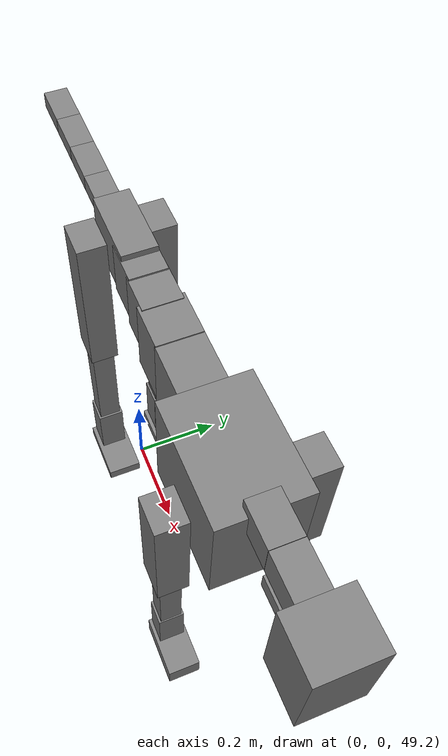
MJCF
<mujoco model="dog">

    <default>
        <joint armature="0.02" stiffness="1" damping="0.2" limited="true"/>
        <geom condim="3" friction="1 0.05 0.05" margin="0.01"/>
        <motor ctrllimited="true" ctrlrange="-1.0 1.0" forcelimited="true" gear="50"/>
    </default>

    <compiler inertiafromgeom="true" angle="radian"/>

    <option timestep="0.016" iterations="50" tolerance="1e-10" solver="Newton" jacobian="dense" cone="pyramidal"/>

    <size nconmax="20000" njmax="60000" nstack="5000000"/>
    <visual>
        <map force="0.1" zfar="30"/>
        <rgba haze="0.15 0.25 0.35 1"/>
        <quality shadowsize="2048"/>
        <global offwidth="800" offheight="800"/>
    </visual>

    <asset>
        <texture type="skybox" builtin="gradient" rgb1="0.3 0.5 0.7" rgb2="0 0 0" width="512" height="512"/>
        <texture name="texplane" type="2d" builtin="checker" rgb1=".2 .3 .4" rgb2=".1 0.15 0.2" width="512" height="512"
                 mark="cross" markrgb=".8 .8 .8"/>
        <texture name="texgeom" type="cube" builtin="flat" mark="cross" width="127" height="1278" rgb1="0.8 0.6 0.4"
                 rgb2="0.8 0.6 0.4" markrgb="1 1 1" random="0.01"/>

        <material name="matplane" reflectance="0.3" texture="texplane" texrepeat="1 1" texuniform="true"/>
        <material name="matgeom" texture="texgeom" texuniform="true" rgba="0.8 0.6 .4 1"/>
    </asset>

    <worldbody>
        <geom name="floor" pos="0 0 0" size="0 0 .25" type="plane" material="matplane" condim="3"/>

        <light directional="false" diffuse=".2 .2 .2" specular="0 0 0" pos="0 0 5" dir="0 0 -1" castshadow="false"/>
        <light mode="targetbodycom" target="torso" directional="false" diffuse=".8 .8 .8" specular="0.3 0.3 0.3"
               pos="0 0 4.0" dir="0 0 -1"/>

        <body name="root" pos="0 0 50">
            <freejoint name="root_1"/>
            <geom type="box" pos="0 0 -0.02" size="0.0774  0.0358  0.063" density="2030"/>

            <body name="spine1" pos="0.054 0 0">
                <joint name="spine1_y" axis="0 1 0" range="0 0.7" limited="true"/>
                <geom type="box" pos="0.02375 0 -0.03" size="0.04375  0.0375  0.05985" density="2030"/>

                <body name="spine2" pos="0.0612 0 0">
                    <joint name="spine2_y" axis="0 1 0" range="-0.15 0.15" limited="true"/>
                    <geom type="box" pos="0.03555  0  -0.04" size="0.04055  0.039  0.06615" density="2030"/>

                    <body name="spine3" pos="0.0730 0 0">
                        <joint name="spine3_y" axis="0 1 0" range="-0.15 0.15" limited="true"/>
                        <geom type="box" pos="0.03555  0  -0.057" size="0.04555  0.0445  0.081" density="2030"/>

                        <body name="spine4" pos="0.0780 0 0">
                            <joint name="spine4_y" axis="0 1 0" range="-0.15 0.15" limited="true"/>
                            <geom type="box" pos="0.05265  0  -0.07" size="0.05265  0.045  0.09135" density="2030"/>

                            <body name="torso" pos="0.1082 0 0">
                                <joint name="torso_y" axis="0 1 0" range="-0.15 0.15" limited="true"/>
                                <geom type="box" pos="0.11925  0  -0.085" size="0.11925  0.085  0.11745"
                                      density="2030"/>

                                <body name="neck1" pos="0.2160  0   0.0180">
                                    <joint name="neck1_y" axis="0 1 0" range="-1.2  -1" limited="true"/>
                                    <geom type="box" pos="0.0423  0  0" size="0.0423  0.03  0.036" density="2325"/>

                                    <body name="neck2" pos="0.0853  0  0">
                                        <joint name="neck2_y" axis="0 1 0" range="0.1  0" limited="true"/>
                                        <geom type="box" pos="0.0423  0  0" size="0.0423  0.03  0.036" density="2325"/>

                                        <body name="head" pos="0.0853  0  0">
                                            <joint name="head_y" axis="0 1 0" range="-0.3  -0.2" limited="true"/>
                                            <geom type="box" pos="0.0531  0  -0.055" size="0.0531  0.06  0.1044"
                                                  density="4030"/>

                                        </body>
                                    </body>
                                </body>

                                <body name="front_shoulder" pos="0.156  0   -0.0480">
                                    <joint name="front_shoulder_y" axis="0 1 0" range="-1 1.5" limited="true"/>
                                    <geom type="box" pos="0 0.13 -0.1065" size="0.0347  0.0297  0.1332" density="1158"/>
                                    <geom type="box" pos="0 -0.13 -0.1065" size="0.0347  0.0297  0.1332"
                                          density="1158"/>

                                    <body name="front_elbow" pos="0  0  -0.2130">
                                        <joint name="front_elbow_y" axis="0 1 0" range="-2 0" limited="true"/>
                                        <geom type="box" pos="0 0.13 -0.1080" size="0.0206  0.0211  0.1080"
                                              density="1081"/>
                                        <geom type="box" pos="0 -0.13 -0.1080" size="0.0206  0.0211  0.1080"
                                              density="1081"/>

                                        <body name="front_wrist" pos="0  0  -0.2160">
                                            <joint name="front_wrist_y" axis="0 1 0" range="-0.2 0" limited="true"/>
                                            <geom type="box" pos="0 0.13 -0.0573" size="0.0229  0.0254  0.0704"
                                                  density="1664"/>
                                            <geom type="box" pos="0 -0.13 -0.0573" size="0.0229  0.0254  0.0704"
                                                  density="1664"/>

                                            <body name="front_finger_end" pos="0  0  -0.1145">
                                                <joint name="front_finger_y" axis="0 1 0" range="-0.4 1"
                                                       limited="true"/>
                                                <geom type="box" pos="0.0323  0.13  -0.0111"
                                                      size="0.0591  0.0323  0.0261" density="1515"/>
                                                <geom type="box" pos="0.0323  -0.13  -0.0111"
                                                      size="0.0591  0.0323  0.0261" density="1515"/>

                                            </body>

                                        </body>
                                    </body>
                                </body>

                            </body>
                        </body>
                    </body>
                </body>
            </body>

            <body name="back_hip" pos="-0.03 0 -0.018">
                <joint name="back_hip_y" axis="0 1 0" range="-1.5 0.3" limited="true"/>
                <geom type="box" pos="0 0.07 -0.1506" size="0.0377  0.0296  0.1734" density="1154"/>
                <geom type="box" pos="0 -0.07 -0.1506" size="0.0377  0.0296  0.1734" density="1154"/>

                <body name="back_knee" pos="0  0  -0.3011">
                    <joint name="back_knee_y" axis="0 1 0" range="0 2.8" limited="true"/>
                    <geom type="box" pos="0 0.07 -0.1404" size="0.0241  0.0238  0.1559" density="1227"/>
                    <geom type="box" pos="0 -0.07 -0.1404" size="0.0241  0.0238  0.1559" density="1227"/>

                    <body name="back_ankle" pos="0  0  -0.2807">
                        <joint name="back_ankle_y" axis="0 1 0" range="-2.2 0" limited="true"/>
                        <geom type="box" pos="0 0.07 -0.0667" size="0.0285  0.0285  0.0779" density="1284"/>
                        <geom type="box" pos="0 -0.07 -0.0667" size="0.0285  0.0285  0.0779" density="1284"/>

                        <body name="back_toe_end" pos="0  0  -0.1333">
                            <joint name="back_toe_y" axis="0 1 0" range="-0.4 1" limited="true"/>
                            <geom type="box" pos="0.0380  0.07  0.0018" size="0.0696  0.0380  0.0132" density="1515"/>
                            <geom type="box" pos="0.0380  -0.07  0.0018" size="0.0696  0.0380  0.0132" density="1515"/>

                        </body>
                    </body>
                </body>
            </body>

            <body name="tail1" pos="-0.074 0 -0.006">
                <joint name="tail1_y" axis="0 1 0" range="-0.2 0.2" limited="true"/>
                <geom type="box" pos="-0.0536  0  0" size="0.045  0.025  0.0175" density="1587"/>

                <body name="tail2" pos="-0.09 0 0">
                    <joint name="tail2_y" axis="0 1 0" range="-0.2 0.2" limited="true"/>
                    <geom type="box" pos="-0.0536  0  0" size="0.045  0.025  0.0175" density="1587"/>

                    <body name="tail3" pos="-0.09 0 0">
                        <joint name="tail3_y" axis="0 1 0" range="-0.2 0.2" limited="true"/>
                        <geom type="box" pos="-0.0536  0  0" size="0.045  0.025  0.0175" density="1587"/>

                        <body name="tail4" pos="-0.09 0 0">
                            <joint name="tail4_y" axis="0 1 0" range="-0.2 0.2" limited="true"/>
                            <geom type="box" pos="-0.0536  0  0" size="0.045  0.025  0.0175" density="1587"/>

                        </body>
                    </body>
                </body>
            </body>
        </body>
    </worldbody>

    <actuator>
        <motor joint="spine1_y" forcerange="-150 150     "/>
        <motor joint="spine2_y" forcerange="-150 150     "/>
        <motor joint="spine3_y" forcerange="-150 150     "/>
        <motor joint="spine4_y" forcerange="-150 150     "/>
        <motor joint="torso_y" forcerange="-150 150     "/>
        <motor joint="neck1_y" forcerange="-100 100       "/>
        <motor joint="neck2_y" forcerange="-100 100       "/>
        <motor joint="head_y" forcerange="-150 150       "/>
        <motor joint="front_shoulder_y" forcerange="-177.78 119.99"/>
        <motor joint="front_elbow_y" forcerange="-143.02 110.16"/>
        <motor joint="front_wrist_y" forcerange="-130.05 73.45"/>
        <motor joint="front_finger_y" forcerange="-58.65 73.36"/>
        <motor joint="back_hip_y" forcerange="-234.08 360.04"/>
        <motor joint="back_knee_y" forcerange="-309.25 236.54"/>
        <motor joint="back_angle_y" forcerange="-211.85 144.63"/>
        <motor joint="back_toe_y" forcerange="-137.17 86.70"/>
        <motor joint="tail1_y" forcerange="-50 50     "/>
        <motor joint="tail2_y" forcerange="-50 50     "/>
        <motor joint="tail3_y" forcerange="-50 50     "/>
        <motor joint="tail4_y" forcerange="-50 50     "/>
    </actuator>
</mujoco>
